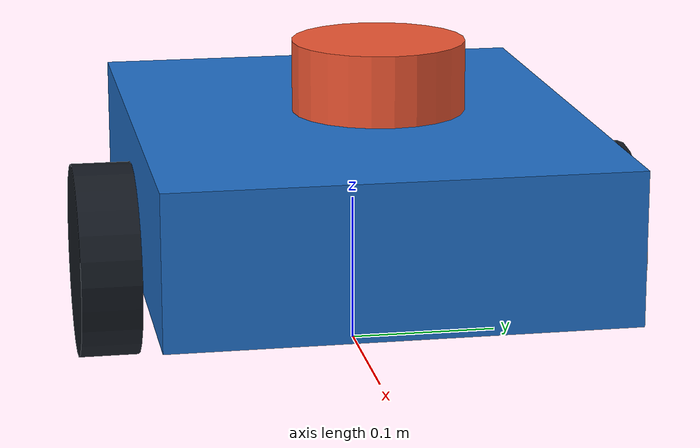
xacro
<?xml version="1.0"?>
<robot xmlns:xacro="http://www.ros.org/wiki/xacro" name="robopilot">
  <xacro:property name="base_length" value="0.38"/>
  <xacro:property name="base_width" value="0.30"/>
  <xacro:property name="base_height" value="0.10"/>
  <xacro:property name="wheel_radius" value="0.065"/>
  <xacro:property name="wheel_width" value="0.040"/>
  <xacro:property name="wheel_separation" value="0.34"/>

  <material name="body_blue">
    <color rgba="0.12 0.43 0.78 1.0"/>
  </material>
  <material name="dark">
    <color rgba="0.08 0.10 0.13 1.0"/>
  </material>
  <material name="sensor">
    <color rgba="0.94 0.34 0.20 1.0"/>
  </material>

  <link name="base_footprint"/>

  <joint name="base_footprint_joint" type="fixed">
    <parent link="base_footprint"/>
    <child link="base_link"/>
    <origin xyz="0 0 0.11" rpy="0 0 0"/>
  </joint>

  <link name="base_link">
    <visual>
      <geometry>
        <box size="${base_length} ${base_width} ${base_height}"/>
      </geometry>
      <material name="body_blue"/>
    </visual>
    <collision>
      <geometry>
        <box size="${base_length} ${base_width} ${base_height}"/>
      </geometry>
    </collision>
    <inertial>
      <origin xyz="0 0 0"/>
      <mass value="6.0"/>
      <inertia ixx="0.050" ixy="0" ixz="0" iyy="0.075" iyz="0" izz="0.105"/>
    </inertial>
  </link>

  <xacro:macro name="drive_wheel" params="side y_value">
    <link name="${side}_wheel_link">
      <visual>
        <origin rpy="1.570796 0 0"/>
        <geometry>
          <cylinder radius="${wheel_radius}" length="${wheel_width}"/>
        </geometry>
        <material name="dark"/>
      </visual>
      <collision>
        <origin rpy="1.570796 0 0"/>
        <geometry>
          <cylinder radius="${wheel_radius}" length="${wheel_width}"/>
        </geometry>
      </collision>
      <inertial>
        <origin rpy="1.570796 0 0"/>
        <mass value="0.45"/>
        <inertia ixx="0.00055" ixy="0" ixz="0" iyy="0.00055" iyz="0" izz="0.00030"/>
      </inertial>
    </link>

    <joint name="${side}_wheel_joint" type="continuous">
      <parent link="base_link"/>
      <child link="${side}_wheel_link"/>
      <origin xyz="0 ${y_value} -0.045" rpy="0 0 0"/>
      <axis xyz="0 1 0"/>
      <dynamics damping="0.05" friction="0.02"/>
    </joint>
  </xacro:macro>

  <xacro:drive_wheel side="left" y_value="${wheel_separation / 2.0}"/>
  <xacro:drive_wheel side="right" y_value="${-wheel_separation / 2.0}"/>

  <link name="caster_link">
    <visual>
      <geometry>
        <sphere radius="0.026"/>
      </geometry>
      <material name="dark"/>
    </visual>
    <collision>
      <geometry>
        <sphere radius="0.026"/>
      </geometry>
    </collision>
    <inertial>
      <mass value="0.08"/>
      <inertia ixx="0.00002" ixy="0" ixz="0" iyy="0.00002" iyz="0" izz="0.00002"/>
    </inertial>
  </link>

  <joint name="caster_joint" type="fixed">
    <parent link="base_link"/>
    <child link="caster_link"/>
    <origin xyz="-0.145 0 -0.078"/>
  </joint>

  <link name="lidar_link">
    <visual>
      <geometry>
        <cylinder radius="0.055" length="0.045"/>
      </geometry>
      <material name="sensor"/>
    </visual>
    <collision>
      <geometry>
        <cylinder radius="0.055" length="0.045"/>
      </geometry>
    </collision>
    <inertial>
      <mass value="0.18"/>
      <inertia ixx="0.00018" ixy="0" ixz="0" iyy="0.00018" iyz="0" izz="0.00025"/>
    </inertial>
  </link>

  <joint name="lidar_joint" type="fixed">
    <parent link="base_link"/>
    <child link="lidar_link"/>
    <origin xyz="0.09 0 0.095"/>
  </joint>

  <gazebo reference="base_link">
    <material>Gazebo/Blue</material>
  </gazebo>
  <gazebo reference="left_wheel_link">
    <material>Gazebo/DarkGrey</material>
    <mu1>1.1</mu1>
    <mu2>1.1</mu2>
  </gazebo>
  <gazebo reference="right_wheel_link">
    <material>Gazebo/DarkGrey</material>
    <mu1>1.1</mu1>
    <mu2>1.1</mu2>
  </gazebo>
  <gazebo reference="caster_link">
    <material>Gazebo/DarkGrey</material>
    <mu1>0.02</mu1>
    <mu2>0.02</mu2>
  </gazebo>

  <gazebo reference="lidar_link">
    <sensor name="front_lidar" type="gpu_lidar">
      <topic>/scan</topic>
      <update_rate>12</update_rate>
      <always_on>true</always_on>
      <visualize>true</visualize>
      <pose>0 0 0.03 0 0 0</pose>
      <lidar>
        <scan>
          <horizontal>
            <samples>720</samples>
            <resolution>1</resolution>
            <min_angle>-3.1415926</min_angle>
            <max_angle>3.1415926</max_angle>
          </horizontal>
        </scan>
        <range>
          <min>0.08</min>
          <max>10.0</max>
          <resolution>0.01</resolution>
        </range>
        <noise>
          <type>gaussian</type>
          <mean>0.0</mean>
          <stddev>0.008</stddev>
        </noise>
      </lidar>
    </sensor>
  </gazebo>

  <gazebo>
    <plugin filename="gz-sim-diff-drive-system" name="gz::sim::systems::DiffDrive">
      <left_joint>left_wheel_joint</left_joint>
      <right_joint>right_wheel_joint</right_joint>
      <wheel_separation>${wheel_separation}</wheel_separation>
      <wheel_radius>${wheel_radius}</wheel_radius>
      <odom_publish_frequency>30</odom_publish_frequency>
      <topic>/cmd_vel</topic>
      <odom_topic>/odom</odom_topic>
      <tf_topic>/tf</tf_topic>
      <frame_id>odom</frame_id>
      <child_frame_id>base_footprint</child_frame_id>
    </plugin>

    <plugin filename="gz-sim-joint-state-publisher-system" name="gz::sim::systems::JointStatePublisher">
      <topic>/joint_states</topic>
      <joint_name>left_wheel_joint</joint_name>
      <joint_name>right_wheel_joint</joint_name>
    </plugin>
  </gazebo>
</robot>
